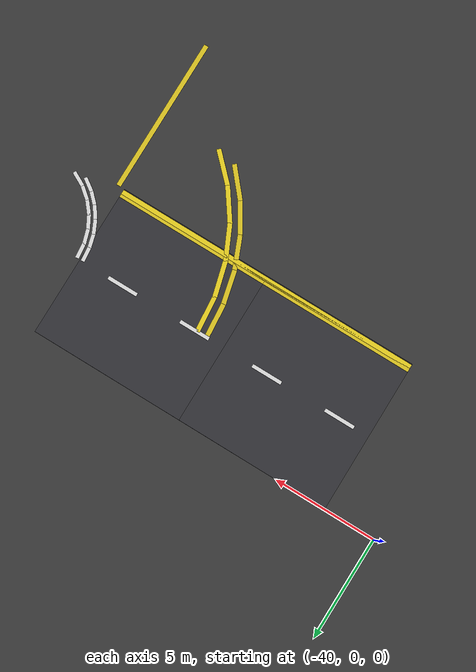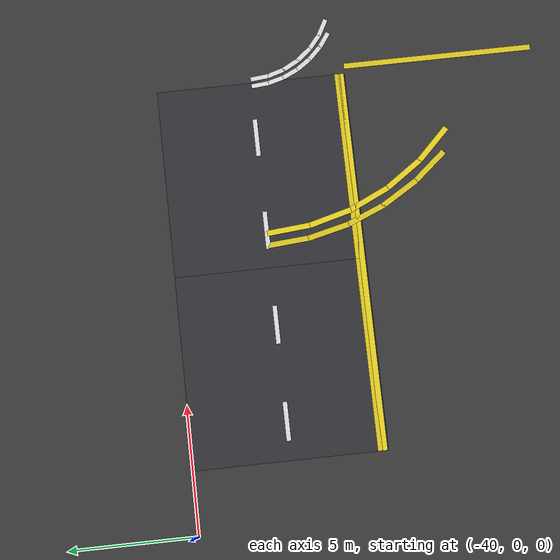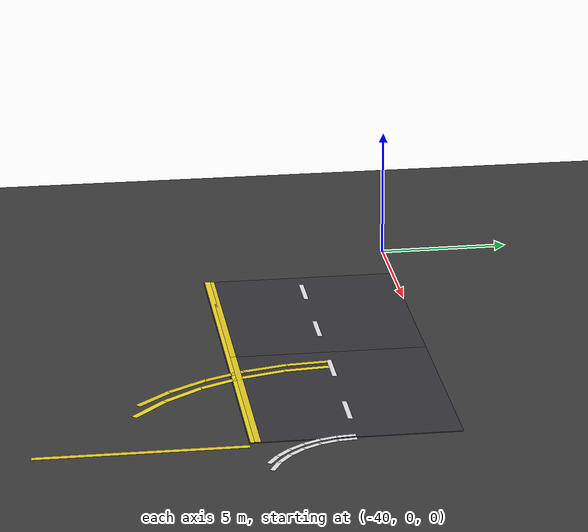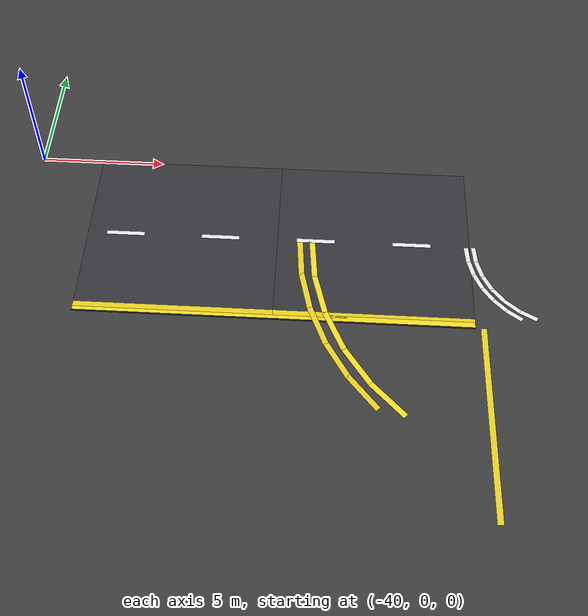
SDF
<sdf version="1.7">
 <world name="compact_city">
  <model name="ground_plane">
   <static>1</static>
   <pose>0 0 0.01 0 -0 0</pose>
   <link name="link">
    <collision name="collision">
     <geometry><plane><normal>0 0 1</normal><size>200 200</size></plane></geometry>
    </collision>
    <visual name="visual">
     <geometry><plane><normal>0 0 1</normal><size>200 200</size></plane></geometry>
     <material>
      <ambient>0.2 0.2 0.2 1</ambient>
      <diffuse>0.25 0.25 0.25 1</diffuse>
      <specular>0.1 0.1 0.1 1</specular>
     </material>
    </visual>
   </link>
  </model>
  <model name="road_tile_46">
   <static>1</static>
   <pose>-33.75 -3.75 0.015 0 -0 0</pose>
   <link name="link">
    <collision name="collision"><geometry><box><size>7.5 7.5 0.03</size></box></geometry></collision>
    <visual name="visual">
     <geometry><box><size>7.5 7.5 0.03</size></box></geometry>
     <material>
      <ambient>0.18 0.18 0.2 1</ambient>
      <diffuse>0.22 0.22 0.24 1</diffuse>
      <specular>0.1 0.1 0.1 1</specular>
     </material>
    </visual>
   </link>
  </model>
  <model name="road_tile_47">
   <static>1</static>
   <pose>-26.25 -3.75 0.015 0 -0 0</pose>
   <link name="link">
    <collision name="collision"><geometry><box><size>7.5 7.5 0.03</size></box></geometry></collision>
    <visual name="visual">
     <geometry><box><size>7.5 7.5 0.03</size></box></geometry>
     <material>
      <ambient>0.18 0.18 0.2 1</ambient>
      <diffuse>0.22 0.22 0.24 1</diffuse>
      <specular>0.1 0.1 0.1 1</specular>
     </material>
    </visual>
   </link>
  </model>
  <model name="el_149">
   <static>1</static>
   <pose>-33.75 -7.2 0.038 0 -0 0</pose>
   <link name="link">
    <visual name="v">
     <geometry><box><size>7.5 0.225 0.002</size></box></geometry>
     <material><ambient>0.9 0.8 0.1 1</ambient><diffuse>0.95 0.85 0.15 1</diffuse></material>
    </visual>
   </link>
  </model>
  <model name="el_157">
   <static>1</static>
   <pose>-26.25 -7.2 0.038 0 -0 0</pose>
   <link name="link">
    <visual name="v">
     <geometry><box><size>7.5 0.225 0.002</size></box></geometry>
     <material><ambient>0.9 0.8 0.1 1</ambient><diffuse>0.95 0.85 0.15 1</diffuse></material>
    </visual>
   </link>
  </model>
  <model name="el_167">
   <static>1</static>
   <pose>-22.2 -11.25 0.038 0 -0 1.5708</pose>
   <link name="link">
    <visual name="v">
     <geometry><box><size>7.5 0.225 0.002</size></box></geometry>
     <material><ambient>0.9 0.8 0.1 1</ambient><diffuse>0.95 0.85 0.15 1</diffuse></material>
    </visual>
   </link>
  </model>
  <model name="ld_101">
   <static>1</static>
   <pose>-36 -3.75 0.038 0 -0 0</pose>
   <link name="link">
    <visual name="v">
     <geometry><box><size>1.5 0.18 0.002</size></box></geometry>
     <material><ambient>1 1 1 1</ambient><diffuse>0.95 0.95 0.95 1</diffuse></material>
    </visual>
   </link>
  </model>
  <model name="ld_102">
   <static>1</static>
   <pose>-32.25 -3.75 0.038 0 -0 0</pose>
   <link name="link">
    <visual name="v">
     <geometry><box><size>1.5 0.18 0.002</size></box></geometry>
     <material><ambient>1 1 1 1</ambient><diffuse>0.95 0.95 0.95 1</diffuse></material>
    </visual>
   </link>
  </model>
  <model name="ld_103">
   <static>1</static>
   <pose>-28.5 -3.75 0.038 0 -0 0</pose>
   <link name="link">
    <visual name="v">
     <geometry><box><size>1.5 0.18 0.002</size></box></geometry>
     <material><ambient>1 1 1 1</ambient><diffuse>0.95 0.95 0.95 1</diffuse></material>
    </visual>
   </link>
  </model>
  <model name="ld_104">
   <static>1</static>
   <pose>-24.75 -3.75 0.038 0 -0 0</pose>
   <link name="link">
    <visual name="v">
     <geometry><box><size>1.5 0.18 0.002</size></box></geometry>
     <material><ambient>1 1 1 1</ambient><diffuse>0.95 0.95 0.95 1</diffuse></material>
    </visual>
   </link>
  </model>
  <model name="rr_658">
   <static>1</static>
   <pose>-22.3183 -4.1181 0.038 0 0 -1.47259</pose>
   <link name="link">
    <visual name="v">
     <geometry><box><size>0.730424 0.18 0.002</size></box></geometry>
     <material><ambient>1 1 1 1</ambient><diffuse>0.95 0.95 0.95 1</diffuse></material>
    </visual>
   </link>
  </model>
  <model name="rr_659">
   <static>1</static>
   <pose>-22.1865 -4.78155 0.038 0 0 -1.27628</pose>
   <link name="link">
    <visual name="v">
     <geometry><box><size>0.730424 0.18 0.002</size></box></geometry>
     <material><ambient>1 1 1 1</ambient><diffuse>0.95 0.95 0.95 1</diffuse></material>
    </visual>
   </link>
  </model>
  <model name="rr_660">
   <static>1</static>
   <pose>-21.9276 -5.4063 0.038 0 0 -1.07988</pose>
   <link name="link">
    <visual name="v">
     <geometry><box><size>0.730424 0.18 0.002</size></box></geometry>
     <material><ambient>1 1 1 1</ambient><diffuse>0.95 0.95 0.95 1</diffuse></material>
    </visual>
   </link>
  </model>
  <model name="rr_661">
   <static>1</static>
   <pose>-21.5519 -5.96865 0.038 0 0 -0.883585</pose>
   <link name="link">
    <visual name="v">
     <geometry><box><size>0.730424 0.18 0.002</size></box></geometry>
     <material><ambient>1 1 1 1</ambient><diffuse>0.95 0.95 0.95 1</diffuse></material>
    </visual>
   </link>
  </model>
  <model name="rr_662">
   <static>1</static>
   <pose>-21.0737 -6.44685 0.038 0 0 -0.687185</pose>
   <link name="link">
    <visual name="v">
     <geometry><box><size>0.730424 0.18 0.002</size></box></geometry>
     <material><ambient>1 1 1 1</ambient><diffuse>0.95 0.95 0.95 1</diffuse></material>
    </visual>
   </link>
  </model>
  <model name="rr_663">
   <static>1</static>
   <pose>-20.5113 -6.8226 0.038 0 0 -0.490885</pose>
   <link name="link">
    <visual name="v">
     <geometry><box><size>0.730424 0.18 0.002</size></box></geometry>
     <material><ambient>1 1 1 1</ambient><diffuse>0.95 0.95 0.95 1</diffuse></material>
    </visual>
   </link>
  </model>
  <model name="ro_694">
   <static>1</static>
   <pose>-29.0535 -4.58025 0.038 0 0 -1.49229</pose>
   <link name="link">
    <visual name="v">
     <geometry><box><size>1.6806 0.225 0.002</size></box></geometry>
     <material><ambient>0.9 0.8 0.1 1</ambient><diffuse>0.95 0.85 0.15 1</diffuse></material>
    </visual>
   </link>
  </model>
  <model name="ro_695">
   <static>1</static>
   <pose>-28.8031 -6.1611 0.038 0 0 -1.33519</pose>
   <link name="link">
    <visual name="v">
     <geometry><box><size>1.6806 0.225 0.002</size></box></geometry>
     <material><ambient>0.9 0.8 0.1 1</ambient><diffuse>0.95 0.85 0.15 1</diffuse></material>
    </visual>
   </link>
  </model>
  <model name="ro_696">
   <static>1</static>
   <pose>-28.3086 -7.6833 0.038 0 0 -1.17809</pose>
   <link name="link">
    <visual name="v">
     <geometry><box><size>1.6806 0.225 0.002</size></box></geometry>
     <material><ambient>0.9 0.8 0.1 1</ambient><diffuse>0.95 0.85 0.15 1</diffuse></material>
    </visual>
   </link>
  </model>
  <model name="ro_697">
   <static>1</static>
   <pose>-27.582 -9.1095 0.038 0 0 -1.02099</pose>
   <link name="link">
    <visual name="v">
     <geometry><box><size>1.6806 0.225 0.002</size></box></geometry>
     <material><ambient>0.9 0.8 0.1 1</ambient><diffuse>0.95 0.85 0.15 1</diffuse></material>
    </visual>
   </link>
  </model>
  <model name="ro_698">
   <static>1</static>
   <pose>-26.6412 -10.4043 0.038 0 0 -0.863985</pose>
   <link name="link">
    <visual name="v">
     <geometry><box><size>1.6806 0.225 0.002</size></box></geometry>
     <material><ambient>0.9 0.8 0.1 1</ambient><diffuse>0.95 0.85 0.15 1</diffuse></material>
    </visual>
   </link>
  </model>
  <model name="edge_h_13">
   <static>1</static>
   <pose>-30 -7.35 0.038 0 -0 0</pose>
   <link name="link">
    <visual name="visual">
     <geometry><box><size>15 0.225 0.002</size></box></geometry>
     <material><ambient>0.95 0.85 0.1 1</ambient><diffuse>1 0.9 0.15 1</diffuse></material>
    </visual>
   </link>
  </model>
  <model name="ra_ring_519">
   <static>1</static>
   <pose>-22.6065 -4.10565 0.038 0 0 -1.4835</pose>
   <link name="link">
    <visual name="visual">
     <geometry><box><size>0.683669 0.18 0.002</size></box></geometry>
     <material><ambient>1 1 1 1</ambient><diffuse>0.95 0.95 0.95 1</diffuse></material>
    </visual>
   </link>
  </model>
  <model name="ra_ring_520">
   <static>1</static>
   <pose>-22.4934 -4.7469 0.038 0 0 -1.309</pose>
   <link name="link">
    <visual name="visual">
     <geometry><box><size>0.683669 0.18 0.002</size></box></geometry>
     <material><ambient>1 1 1 1</ambient><diffuse>0.95 0.95 0.95 1</diffuse></material>
    </visual>
   </link>
  </model>
  <model name="ra_ring_521">
   <static>1</static>
   <pose>-22.2706 -5.35875 0.038 0 0 -1.1345</pose>
   <link name="link">
    <visual name="visual">
     <geometry><box><size>0.683669 0.18 0.002</size></box></geometry>
     <material><ambient>1 1 1 1</ambient><diffuse>0.95 0.95 0.95 1</diffuse></material>
    </visual>
   </link>
  </model>
  <model name="ra_ring_522">
   <static>1</static>
   <pose>-21.9452 -5.92275 0.038 0 0 -0.9599</pose>
   <link name="link">
    <visual name="visual">
     <geometry><box><size>0.683669 0.18 0.002</size></box></geometry>
     <material><ambient>1 1 1 1</ambient><diffuse>0.95 0.95 0.95 1</diffuse></material>
    </visual>
   </link>
  </model>
  <model name="ra_ring_523">
   <static>1</static>
   <pose>-21.5265 -6.4215 0.038 0 0 -0.7854</pose>
   <link name="link">
    <visual name="visual">
     <geometry><box><size>0.683669 0.18 0.002</size></box></geometry>
     <material><ambient>1 1 1 1</ambient><diffuse>0.95 0.95 0.95 1</diffuse></material>
    </visual>
   </link>
  </model>
  <model name="ra_ring_524">
   <static>1</static>
   <pose>-21.0278 -6.84015 0.038 0 0 -0.6109</pose>
   <link name="link">
    <visual name="visual">
     <geometry><box><size>0.683669 0.18 0.002</size></box></geometry>
     <material><ambient>1 1 1 1</ambient><diffuse>0.95 0.95 0.95 1</diffuse></material>
    </visual>
   </link>
  </model>
  <model name="ra_outer_555">
   <static>1</static>
   <pose>-28.5609 -4.6266 0.038 0 0 -1.4835</pose>
   <link name="link">
    <visual name="visual">
     <geometry><box><size>1.72953 0.225 0.002</size></box></geometry>
     <material><ambient>0.95 0.85 0.1 1</ambient><diffuse>1 0.9 0.15 1</diffuse></material>
    </visual>
   </link>
  </model>
  <model name="ra_outer_556">
   <static>1</static>
   <pose>-28.2669 -6.29385 0.038 0 0 -1.309</pose>
   <link name="link">
    <visual name="visual">
     <geometry><box><size>1.72953 0.225 0.002</size></box></geometry>
     <material><ambient>0.95 0.85 0.1 1</ambient><diffuse>1 0.9 0.15 1</diffuse></material>
    </visual>
   </link>
  </model>
  <model name="ra_outer_557">
   <static>1</static>
   <pose>-27.6879 -7.8849 0.038 0 0 -1.1345</pose>
   <link name="link">
    <visual name="visual">
     <geometry><box><size>1.72953 0.225 0.002</size></box></geometry>
     <material><ambient>0.95 0.85 0.1 1</ambient><diffuse>1 0.9 0.15 1</diffuse></material>
    </visual>
   </link>
  </model>
  <model name="ra_outer_558">
   <static>1</static>
   <pose>-26.8413 -9.35115 0.038 0 0 -0.9599</pose>
   <link name="link">
    <visual name="visual">
     <geometry><box><size>1.72953 0.225 0.002</size></box></geometry>
     <material><ambient>0.95 0.85 0.1 1</ambient><diffuse>1 0.9 0.15 1</diffuse></material>
    </visual>
   </link>
  </model>
  <model name="ra_outer_559">
   <static>1</static>
   <pose>-25.7531 -10.648 0.038 0 0 -0.7854</pose>
   <link name="link">
    <visual name="visual">
     <geometry><box><size>1.72953 0.225 0.002</size></box></geometry>
     <material><ambient>0.95 0.85 0.1 1</ambient><diffuse>1 0.9 0.15 1</diffuse></material>
    </visual>
   </link>
  </model>
 </world>
</sdf>
